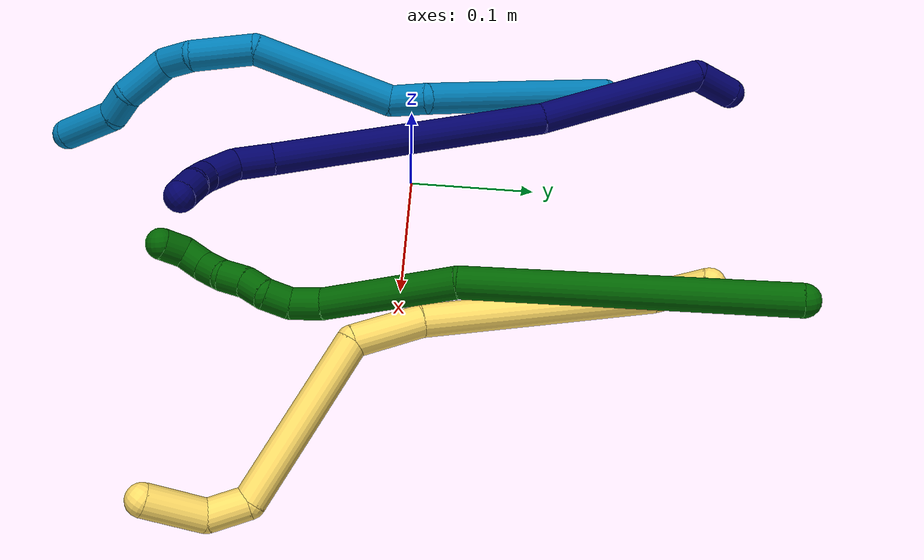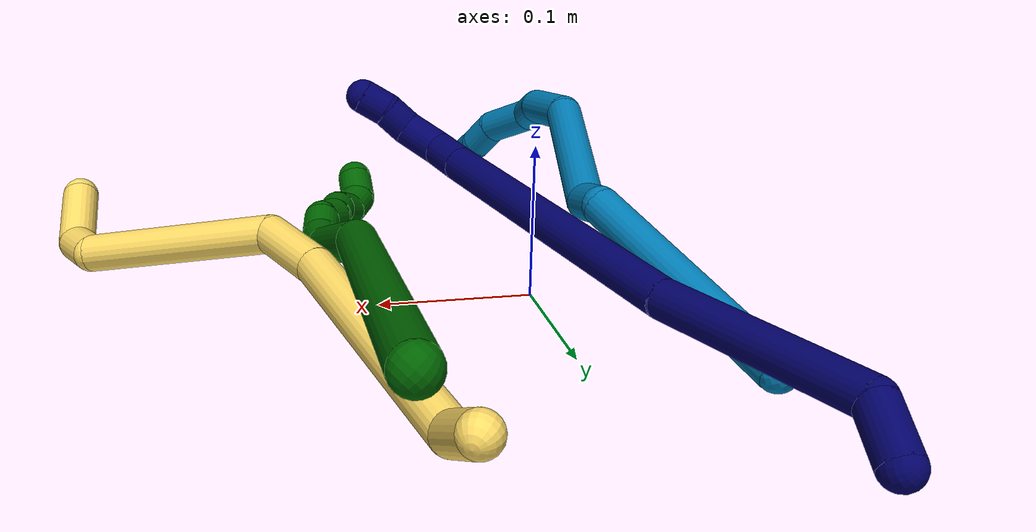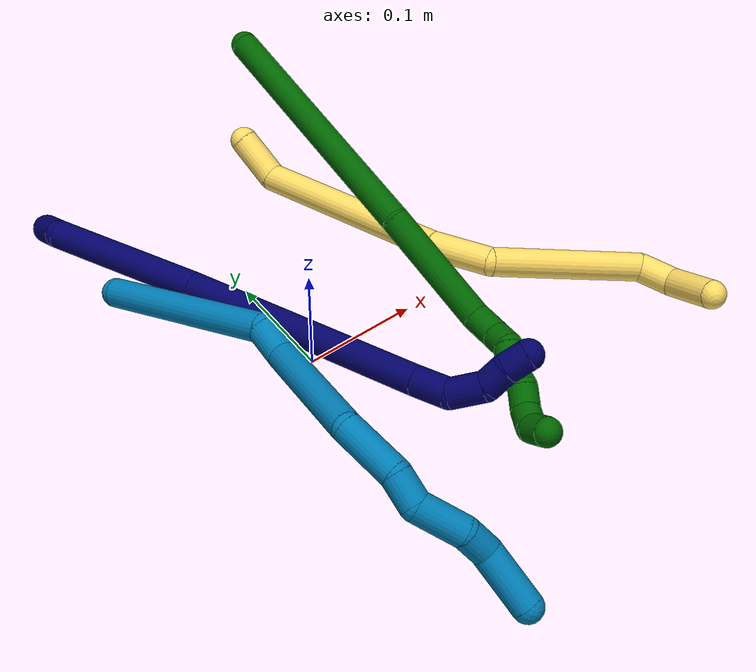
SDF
<sdf version="1.7">
 <world name="default">
  <model name="5">
   <static>0</static>
   <link name="5">
    <collision name="collision-cylinder-e_1_1_4">
     <pose>0.01713 -0.002287 -0.013739 2.97665 0.888119 2.79753</pose>
     <geometry><cylinder><radius>0.0125</radius><length>0.044155</length></cylinder></geometry>
     <surface>
      <friction><ode><mu>1.16</mu><mu2>1.16</mu2><slip1>0</slip1><slip2>0</slip2></ode></friction>
      <contact><ode><kp>1e+06</kp><kd>1</kd><max_vel>0</max_vel><min_depth>0.001</min_depth></ode></contact>
     </surface>
    </collision>
    <visual name="visual-cylinder-e_1_1_4">
     <pose>0.01713 -0.002287 -0.013739 2.97665 0.888119 2.79753</pose>
     <geometry><cylinder><radius>0.0125</radius><length>0.044155</length></cylinder></geometry>
     <material><ambient>1 0.858824 0.4 1</ambient></material>
    </visual>
    <collision name="collision-cylinder-e_2_4_5">
     <pose>0.071322 -0.058095 -0.092867 2.45567 0.413348 1.06189</pose>
     <geometry><cylinder><radius>0.0125</radius><length>0.184541</length></cylinder></geometry>
     <surface>
      <friction><ode><mu>1.16</mu><mu2>1.16</mu2><slip1>0</slip1><slip2>0</slip2></ode></friction>
      <contact><ode><kp>1e+06</kp><kd>1</kd><max_vel>0</max_vel><min_depth>0.001</min_depth></ode></contact>
     </surface>
    </collision>
    <visual name="visual-cylinder-e_2_4_5">
     <pose>0.071322 -0.058095 -0.092867 2.45567 0.413348 1.06189</pose>
     <geometry><cylinder><radius>0.0125</radius><length>0.184541</length></cylinder></geometry>
     <material><ambient>1 0.858824 0.4 1</ambient></material>
    </visual>
    <collision name="collision-cylinder-e_3_5_6">
     <pose>0.121469 -0.129955 -0.173797 2.27378 0.498417 1.00454</pose>
     <geometry><cylinder><radius>0.0125</radius><length>0.054739</length></cylinder></geometry>
     <surface>
      <friction><ode><mu>1.16</mu><mu2>1.16</mu2><slip1>0</slip1><slip2>0</slip2></ode></friction>
      <contact><ode><kp>1e+06</kp><kd>1</kd><max_vel>0</max_vel><min_depth>0.001</min_depth></ode></contact>
     </surface>
    </collision>
    <visual name="visual-cylinder-e_3_5_6">
     <pose>0.121469 -0.129955 -0.173797 2.27378 0.498417 1.00454</pose>
     <geometry><cylinder><radius>0.0125</radius><length>0.054739</length></cylinder></geometry>
     <material><ambient>1 0.858824 0.4 1</ambient></material>
    </visual>
    <collision name="collision-cylinder-e_4_6_7">
     <pose>0.184711 -0.194716 -0.183877 1.45366 0.82066 0.738213</pose>
     <geometry><cylinder><radius>0.0125</radius><length>0.137122</length></cylinder></geometry>
     <surface>
      <friction><ode><mu>1.16</mu><mu2>1.16</mu2><slip1>0</slip1><slip2>0</slip2></ode></friction>
      <contact><ode><kp>1e+06</kp><kd>1</kd><max_vel>0</max_vel><min_depth>0.001</min_depth></ode></contact>
     </surface>
    </collision>
    <visual name="visual-cylinder-e_4_6_7">
     <pose>0.184711 -0.194716 -0.183877 1.45366 0.82066 0.738213</pose>
     <geometry><cylinder><radius>0.0125</radius><length>0.137122</length></cylinder></geometry>
     <material><ambient>1 0.858824 0.4 1</ambient></material>
    </visual>
    <collision name="collision-cylinder-e_5_7_8">
     <pose>0.244284 -0.249746 -0.18763 2.39018 0.641205 1.39947</pose>
     <geometry><cylinder><radius>0.0125</radius><length>0.031476</length></cylinder></geometry>
     <surface>
      <friction><ode><mu>1.16</mu><mu2>1.16</mu2><slip1>0</slip1><slip2>0</slip2></ode></friction>
      <contact><ode><kp>1e+06</kp><kd>1</kd><max_vel>0</max_vel><min_depth>0.001</min_depth></ode></contact>
     </surface>
    </collision>
    <visual name="visual-cylinder-e_5_7_8">
     <pose>0.244284 -0.249746 -0.18763 2.39018 0.641205 1.39947</pose>
     <geometry><cylinder><radius>0.0125</radius><length>0.031476</length></cylinder></geometry>
     <material><ambient>1 0.858824 0.4 1</ambient></material>
    </visual>
    <collision name="collision-cylinder-e_6_8_2">
     <pose>0.25353 -0.271102 -0.217162 2.58125 -0.006981 -0.024261</pose>
     <geometry><cylinder><radius>0.0125</radius><length>0.047968</length></cylinder></geometry>
     <surface>
      <friction><ode><mu>1.16</mu><mu2>1.16</mu2><slip1>0</slip1><slip2>0</slip2></ode></friction>
      <contact><ode><kp>1e+06</kp><kd>1</kd><max_vel>0</max_vel><min_depth>0.001</min_depth></ode></contact>
     </surface>
    </collision>
    <visual name="visual-cylinder-e_6_8_2">
     <pose>0.25353 -0.271102 -0.217162 2.58125 -0.006981 -0.024261</pose>
     <geometry><cylinder><radius>0.0125</radius><length>0.047968</length></cylinder></geometry>
     <material><ambient>1 0.858824 0.4 1</ambient></material>
    </visual>
    <collision name="collision-sphere-2">
     <pose>0.253362 -0.283849 -0.237478 0 -0 0</pose>
     <geometry><sphere><radius>0.0125</radius></sphere></geometry>
     <surface>
      <friction><ode><mu>1.16</mu><mu2>1.16</mu2><slip1>0</slip1><slip2>0</slip2></ode></friction>
      <contact><ode><kp>1e+06</kp><kd>1</kd><max_vel>0</max_vel><min_depth>0.001</min_depth></ode></contact>
     </surface>
    </collision>
    <visual name="visual-sphere-2">
     <pose>0.253362 -0.283849 -0.237478 0 -0 0</pose>
     <geometry><sphere><radius>0.0125</radius></sphere></geometry>
     <material><ambient>1 0.858824 0.4 1</ambient></material>
    </visual>
    <collision name="collision-sphere-4">
     <pose>0.034259 -0.004574 -0.027478 0 -0 0</pose>
     <geometry><sphere><radius>0.0125</radius></sphere></geometry>
     <surface>
      <friction><ode><mu>1.16</mu><mu2>1.16</mu2><slip1>0</slip1><slip2>0</slip2></ode></friction>
      <contact><ode><kp>1e+06</kp><kd>1</kd><max_vel>0</max_vel><min_depth>0.001</min_depth></ode></contact>
     </surface>
    </collision>
    <visual name="visual-sphere-4">
     <pose>0.034259 -0.004574 -0.027478 0 -0 0</pose>
     <geometry><sphere><radius>0.0125</radius></sphere></geometry>
     <material><ambient>1 0.858824 0.4 1</ambient></material>
    </visual>
    <collision name="collision-sphere-1">
     <geometry><sphere><radius>0.0125</radius></sphere></geometry>
     <surface>
      <friction><ode><mu>1.16</mu><mu2>1.16</mu2><slip1>0</slip1><slip2>0</slip2></ode></friction>
      <contact><ode><kp>1e+06</kp><kd>1</kd><max_vel>0</max_vel><min_depth>0.001</min_depth></ode></contact>
     </surface>
    </collision>
    <visual name="visual-sphere-1">
     <geometry><sphere><radius>0.0125</radius></sphere></geometry>
     <material><ambient>1 0.858824 0.4 1</ambient></material>
    </visual>
    <collision name="collision-sphere-8">
     <pose>0.253697 -0.258356 -0.196846 0 -0 0</pose>
     <geometry><sphere><radius>0.0125</radius></sphere></geometry>
     <surface>
      <friction><ode><mu>1.16</mu><mu2>1.16</mu2><slip1>0</slip1><slip2>0</slip2></ode></friction>
      <contact><ode><kp>1e+06</kp><kd>1</kd><max_vel>0</max_vel><min_depth>0.001</min_depth></ode></contact>
     </surface>
    </collision>
    <visual name="visual-sphere-8">
     <pose>0.253697 -0.258356 -0.196846 0 -0 0</pose>
     <geometry><sphere><radius>0.0125</radius></sphere></geometry>
     <material><ambient>1 0.858824 0.4 1</ambient></material>
    </visual>
    <collision name="collision-sphere-5">
     <pose>0.108385 -0.111615 -0.158256 0 -0 0</pose>
     <geometry><sphere><radius>0.0125</radius></sphere></geometry>
     <surface>
      <friction><ode><mu>1.16</mu><mu2>1.16</mu2><slip1>0</slip1><slip2>0</slip2></ode></friction>
      <contact><ode><kp>1e+06</kp><kd>1</kd><max_vel>0</max_vel><min_depth>0.001</min_depth></ode></contact>
     </surface>
    </collision>
    <visual name="visual-sphere-5">
     <pose>0.108385 -0.111615 -0.158256 0 -0 0</pose>
     <geometry><sphere><radius>0.0125</radius></sphere></geometry>
     <material><ambient>1 0.858824 0.4 1</ambient></material>
    </visual>
    <collision name="collision-sphere-6">
     <pose>0.134552 -0.148295 -0.189339 0 -0 0</pose>
     <geometry><sphere><radius>0.0125</radius></sphere></geometry>
     <surface>
      <friction><ode><mu>1.16</mu><mu2>1.16</mu2><slip1>0</slip1><slip2>0</slip2></ode></friction>
      <contact><ode><kp>1e+06</kp><kd>1</kd><max_vel>0</max_vel><min_depth>0.001</min_depth></ode></contact>
     </surface>
    </collision>
    <visual name="visual-sphere-6">
     <pose>0.134552 -0.148295 -0.189339 0 -0 0</pose>
     <geometry><sphere><radius>0.0125</radius></sphere></geometry>
     <material><ambient>1 0.858824 0.4 1</ambient></material>
    </visual>
    <collision name="collision-sphere-7">
     <pose>0.23487 -0.241136 -0.178414 0 -0 0</pose>
     <geometry><sphere><radius>0.0125</radius></sphere></geometry>
     <surface>
      <friction><ode><mu>1.16</mu><mu2>1.16</mu2><slip1>0</slip1><slip2>0</slip2></ode></friction>
      <contact><ode><kp>1e+06</kp><kd>1</kd><max_vel>0</max_vel><min_depth>0.001</min_depth></ode></contact>
     </surface>
    </collision>
    <visual name="visual-sphere-7">
     <pose>0.23487 -0.241136 -0.178414 0 -0 0</pose>
     <geometry><sphere><radius>0.0125</radius></sphere></geometry>
     <material><ambient>1 0.858824 0.4 1</ambient></material>
    </visual>
    <inertial>
     <pose>0.131491 -0.131001 -0.137588 0 -0 0</pose>
     <mass>0.5</mass>
     <inertia>
      <ixx>0.000923</ixx>
      <ixy>0</ixy>
      <ixz>0</ixz>
      <iyy>0.000564</iyy>
      <iyz>0</iyz>
      <izz>6.7e-05</izz>
     </inertia>
    </inertial>
   </link>
   <pose>0.089868 0.235327 0.032655 -1.85028 0.926948 -0.756047</pose>
  </model>
  <model name="6">
   <static>0</static>
   <link name="6">
    <collision name="collision-cylinder-e_1_1_4">
     <pose>0.003152 -0.121939 -0.011405 1.66405 0.025727 0.028246</pose>
     <geometry><cylinder><radius>0.0125</radius><length>0.245023</length></cylinder></geometry>
     <surface>
      <friction><ode><mu>1.16</mu><mu2>1.16</mu2><slip1>0</slip1><slip2>0</slip2></ode></friction>
      <contact><ode><kp>1e+06</kp><kd>1</kd><max_vel>0</max_vel><min_depth>0.001</min_depth></ode></contact>
     </surface>
    </collision>
    <visual name="visual-cylinder-e_1_1_4">
     <pose>0.003152 -0.121939 -0.011405 1.66405 0.025727 0.028246</pose>
     <geometry><cylinder><radius>0.0125</radius><length>0.245023</length></cylinder></geometry>
     <material><ambient>0 0.392157 0.003922 1</ambient></material>
    </visual>
    <collision name="collision-cylinder-e_2_4_5">
     <pose>0.012369 -0.297266 -0.014921 1.4241 0.111931 0.096633</pose>
     <geometry><cylinder><radius>0.0125</radius><length>0.108616</length></cylinder></geometry>
     <surface>
      <friction><ode><mu>1.16</mu><mu2>1.16</mu2><slip1>0</slip1><slip2>0</slip2></ode></friction>
      <contact><ode><kp>1e+06</kp><kd>1</kd><max_vel>0</max_vel><min_depth>0.001</min_depth></ode></contact>
     </surface>
    </collision>
    <visual name="visual-cylinder-e_2_4_5">
     <pose>0.012369 -0.297266 -0.014921 1.4241 0.111931 0.096633</pose>
     <geometry><cylinder><radius>0.0125</radius><length>0.108616</length></cylinder></geometry>
     <material><ambient>0 0.392157 0.003922 1</ambient></material>
    </visual>
    <collision name="collision-cylinder-e_3_5_6">
     <pose>0.017427 -0.363198 -0.008048 1.65156 -0.079925 -0.086647</pose>
     <geometry><cylinder><radius>0.0125</radius><length>0.025251</length></cylinder></geometry>
     <surface>
      <friction><ode><mu>1.16</mu><mu2>1.16</mu2><slip1>0</slip1><slip2>0</slip2></ode></friction>
      <contact><ode><kp>1e+06</kp><kd>1</kd><max_vel>0</max_vel><min_depth>0.001</min_depth></ode></contact>
     </surface>
    </collision>
    <visual name="visual-cylinder-e_3_5_6">
     <pose>0.017427 -0.363198 -0.008048 1.65156 -0.079925 -0.086647</pose>
     <geometry><cylinder><radius>0.0125</radius><length>0.025251</length></cylinder></geometry>
     <material><ambient>0 0.392157 0.003922 1</ambient></material>
    </visual>
    <collision name="collision-cylinder-e_4_6_7">
     <pose>0.014702 -0.384741 -0.013788 2.0543 -0.167338 -0.275755</pose>
     <geometry><cylinder><radius>0.0125</radius><length>0.020615</length></cylinder></geometry>
     <surface>
      <friction><ode><mu>1.16</mu><mu2>1.16</mu2><slip1>0</slip1><slip2>0</slip2></ode></friction>
      <contact><ode><kp>1e+06</kp><kd>1</kd><max_vel>0</max_vel><min_depth>0.001</min_depth></ode></contact>
     </surface>
    </collision>
    <visual name="visual-cylinder-e_4_6_7">
     <pose>0.014702 -0.384741 -0.013788 2.0543 -0.167338 -0.275755</pose>
     <geometry><cylinder><radius>0.0125</radius><length>0.020615</length></cylinder></geometry>
     <material><ambient>0 0.392157 0.003922 1</ambient></material>
    </visual>
    <collision name="collision-cylinder-e_5_7_8">
     <pose>0.01726 -0.401967 -0.022308 2.00296 0.440802 0.673454</pose>
     <geometry><cylinder><radius>0.0125</radius><length>0.020037</length></cylinder></geometry>
     <surface>
      <friction><ode><mu>1.16</mu><mu2>1.16</mu2><slip1>0</slip1><slip2>0</slip2></ode></friction>
      <contact><ode><kp>1e+06</kp><kd>1</kd><max_vel>0</max_vel><min_depth>0.001</min_depth></ode></contact>
     </surface>
    </collision>
    <visual name="visual-cylinder-e_5_7_8">
     <pose>0.01726 -0.401967 -0.022308 2.00296 0.440802 0.673454</pose>
     <geometry><cylinder><radius>0.0125</radius><length>0.020037</length></cylinder></geometry>
     <material><ambient>0 0.392157 0.003922 1</ambient></material>
    </visual>
    <collision name="collision-cylinder-e_6_8_9">
     <pose>0.022808 -0.419785 -0.02902 1.8661 0.126361 0.170332</pose>
     <geometry><cylinder><radius>0.0125</radius><length>0.020209</length></cylinder></geometry>
     <surface>
      <friction><ode><mu>1.16</mu><mu2>1.16</mu2><slip1>0</slip1><slip2>0</slip2></ode></friction>
      <contact><ode><kp>1e+06</kp><kd>1</kd><max_vel>0</max_vel><min_depth>0.001</min_depth></ode></contact>
     </surface>
    </collision>
    <visual name="visual-cylinder-e_6_8_9">
     <pose>0.022808 -0.419785 -0.02902 1.8661 0.126361 0.170332</pose>
     <geometry><cylinder><radius>0.0125</radius><length>0.020209</length></cylinder></geometry>
     <material><ambient>0 0.392157 0.003922 1</ambient></material>
    </visual>
    <collision name="collision-cylinder-e_7_9_10">
     <pose>0.029239 -0.437679 -0.034405 1.85968 0.537059 0.70674</pose>
     <geometry><cylinder><radius>0.0125</radius><length>0.020164</length></cylinder></geometry>
     <surface>
      <friction><ode><mu>1.16</mu><mu2>1.16</mu2><slip1>0</slip1><slip2>0</slip2></ode></friction>
      <contact><ode><kp>1e+06</kp><kd>1</kd><max_vel>0</max_vel><min_depth>0.001</min_depth></ode></contact>
     </surface>
    </collision>
    <visual name="visual-cylinder-e_7_9_10">
     <pose>0.029239 -0.437679 -0.034405 1.85968 0.537059 0.70674</pose>
     <geometry><cylinder><radius>0.0125</radius><length>0.020164</length></cylinder></geometry>
     <material><ambient>0 0.392157 0.003922 1</ambient></material>
    </visual>
    <collision name="collision-cylinder-e_8_10_11">
     <pose>0.035731 -0.454014 -0.042744 2.20201 0.133225 0.2613</pose>
     <geometry><cylinder><radius>0.0125</radius><length>0.020076</length></cylinder></geometry>
     <surface>
      <friction><ode><mu>1.16</mu><mu2>1.16</mu2><slip1>0</slip1><slip2>0</slip2></ode></friction>
      <contact><ode><kp>1e+06</kp><kd>1</kd><max_vel>0</max_vel><min_depth>0.001</min_depth></ode></contact>
     </surface>
    </collision>
    <visual name="visual-cylinder-e_8_10_11">
     <pose>0.035731 -0.454014 -0.042744 2.20201 0.133225 0.2613</pose>
     <geometry><cylinder><radius>0.0125</radius><length>0.020076</length></cylinder></geometry>
     <material><ambient>0 0.392157 0.003922 1</ambient></material>
    </visual>
    <collision name="collision-cylinder-e_9_11_2">
     <pose>0.032082 -0.469066 -0.053714 2.19895 -0.521281 -0.964284</pose>
     <geometry><cylinder><radius>0.0125</radius><length>0.02001</length></cylinder></geometry>
     <surface>
      <friction><ode><mu>1.16</mu><mu2>1.16</mu2><slip1>0</slip1><slip2>0</slip2></ode></friction>
      <contact><ode><kp>1e+06</kp><kd>1</kd><max_vel>0</max_vel><min_depth>0.001</min_depth></ode></contact>
     </surface>
    </collision>
    <visual name="visual-cylinder-e_9_11_2">
     <pose>0.032082 -0.469066 -0.053714 2.19895 -0.521281 -0.964284</pose>
     <geometry><cylinder><radius>0.0125</radius><length>0.02001</length></cylinder></geometry>
     <material><ambient>0 0.392157 0.003922 1</ambient></material>
    </visual>
    <collision name="collision-sphere-2">
     <pose>0.027099 -0.476086 -0.058812 0 -0 0</pose>
     <geometry><sphere><radius>0.0125</radius></sphere></geometry>
     <surface>
      <friction><ode><mu>1.16</mu><mu2>1.16</mu2><slip1>0</slip1><slip2>0</slip2></ode></friction>
      <contact><ode><kp>1e+06</kp><kd>1</kd><max_vel>0</max_vel><min_depth>0.001</min_depth></ode></contact>
     </surface>
    </collision>
    <visual name="visual-sphere-2">
     <pose>0.027099 -0.476086 -0.058812 0 -0 0</pose>
     <geometry><sphere><radius>0.0125</radius></sphere></geometry>
     <material><ambient>0 0.392157 0.003922 1</ambient></material>
    </visual>
    <collision name="collision-sphere-11">
     <pose>0.037064 -0.462046 -0.048615 0 -0 0</pose>
     <geometry><sphere><radius>0.0125</radius></sphere></geometry>
     <surface>
      <friction><ode><mu>1.16</mu><mu2>1.16</mu2><slip1>0</slip1><slip2>0</slip2></ode></friction>
      <contact><ode><kp>1e+06</kp><kd>1</kd><max_vel>0</max_vel><min_depth>0.001</min_depth></ode></contact>
     </surface>
    </collision>
    <visual name="visual-sphere-11">
     <pose>0.037064 -0.462046 -0.048615 0 -0 0</pose>
     <geometry><sphere><radius>0.0125</radius></sphere></geometry>
     <material><ambient>0 0.392157 0.003922 1</ambient></material>
    </visual>
    <collision name="collision-sphere-10">
     <pose>0.034397 -0.445983 -0.036873 0 -0 0</pose>
     <geometry><sphere><radius>0.0125</radius></sphere></geometry>
     <surface>
      <friction><ode><mu>1.16</mu><mu2>1.16</mu2><slip1>0</slip1><slip2>0</slip2></ode></friction>
      <contact><ode><kp>1e+06</kp><kd>1</kd><max_vel>0</max_vel><min_depth>0.001</min_depth></ode></contact>
     </surface>
    </collision>
    <visual name="visual-sphere-10">
     <pose>0.034397 -0.445983 -0.036873 0 -0 0</pose>
     <geometry><sphere><radius>0.0125</radius></sphere></geometry>
     <material><ambient>0 0.392157 0.003922 1</ambient></material>
    </visual>
    <collision name="collision-sphere-9">
     <pose>0.024081 -0.429375 -0.031937 0 -0 0</pose>
     <geometry><sphere><radius>0.0125</radius></sphere></geometry>
     <surface>
      <friction><ode><mu>1.16</mu><mu2>1.16</mu2><slip1>0</slip1><slip2>0</slip2></ode></friction>
      <contact><ode><kp>1e+06</kp><kd>1</kd><max_vel>0</max_vel><min_depth>0.001</min_depth></ode></contact>
     </surface>
    </collision>
    <visual name="visual-sphere-9">
     <pose>0.024081 -0.429375 -0.031937 0 -0 0</pose>
     <geometry><sphere><radius>0.0125</radius></sphere></geometry>
     <material><ambient>0 0.392157 0.003922 1</ambient></material>
    </visual>
    <collision name="collision-sphere-4">
     <pose>0.006303 -0.243877 -0.022809 0 -0 0</pose>
     <geometry><sphere><radius>0.0125</radius></sphere></geometry>
     <surface>
      <friction><ode><mu>1.16</mu><mu2>1.16</mu2><slip1>0</slip1><slip2>0</slip2></ode></friction>
      <contact><ode><kp>1e+06</kp><kd>1</kd><max_vel>0</max_vel><min_depth>0.001</min_depth></ode></contact>
     </surface>
    </collision>
    <visual name="visual-sphere-4">
     <pose>0.006303 -0.243877 -0.022809 0 -0 0</pose>
     <geometry><sphere><radius>0.0125</radius></sphere></geometry>
     <material><ambient>0 0.392157 0.003922 1</ambient></material>
    </visual>
    <collision name="collision-sphere-1">
     <geometry><sphere><radius>0.0125</radius></sphere></geometry>
     <surface>
      <friction><ode><mu>1.16</mu><mu2>1.16</mu2><slip1>0</slip1><slip2>0</slip2></ode></friction>
      <contact><ode><kp>1e+06</kp><kd>1</kd><max_vel>0</max_vel><min_depth>0.001</min_depth></ode></contact>
     </surface>
    </collision>
    <visual name="visual-sphere-1">
     <geometry><sphere><radius>0.0125</radius></sphere></geometry>
     <material><ambient>0 0.392157 0.003922 1</ambient></material>
    </visual>
    <collision name="collision-sphere-8">
     <pose>0.021534 -0.410195 -0.026103 0 -0 0</pose>
     <geometry><sphere><radius>0.0125</radius></sphere></geometry>
     <surface>
      <friction><ode><mu>1.16</mu><mu2>1.16</mu2><slip1>0</slip1><slip2>0</slip2></ode></friction>
      <contact><ode><kp>1e+06</kp><kd>1</kd><max_vel>0</max_vel><min_depth>0.001</min_depth></ode></contact>
     </surface>
    </collision>
    <visual name="visual-sphere-8">
     <pose>0.021534 -0.410195 -0.026103 0 -0 0</pose>
     <geometry><sphere><radius>0.0125</radius></sphere></geometry>
     <material><ambient>0 0.392157 0.003922 1</ambient></material>
    </visual>
    <collision name="collision-sphere-5">
     <pose>0.018435 -0.350654 -0.007032 0 -0 0</pose>
     <geometry><sphere><radius>0.0125</radius></sphere></geometry>
     <surface>
      <friction><ode><mu>1.16</mu><mu2>1.16</mu2><slip1>0</slip1><slip2>0</slip2></ode></friction>
      <contact><ode><kp>1e+06</kp><kd>1</kd><max_vel>0</max_vel><min_depth>0.001</min_depth></ode></contact>
     </surface>
    </collision>
    <visual name="visual-sphere-5">
     <pose>0.018435 -0.350654 -0.007032 0 -0 0</pose>
     <geometry><sphere><radius>0.0125</radius></sphere></geometry>
     <material><ambient>0 0.392157 0.003922 1</ambient></material>
    </visual>
    <collision name="collision-sphere-6">
     <pose>0.016419 -0.375742 -0.009063 0 -0 0</pose>
     <geometry><sphere><radius>0.0125</radius></sphere></geometry>
     <surface>
      <friction><ode><mu>1.16</mu><mu2>1.16</mu2><slip1>0</slip1><slip2>0</slip2></ode></friction>
      <contact><ode><kp>1e+06</kp><kd>1</kd><max_vel>0</max_vel><min_depth>0.001</min_depth></ode></contact>
     </surface>
    </collision>
    <visual name="visual-sphere-6">
     <pose>0.016419 -0.375742 -0.009063 0 -0 0</pose>
     <geometry><sphere><radius>0.0125</radius></sphere></geometry>
     <material><ambient>0 0.392157 0.003922 1</ambient></material>
    </visual>
    <collision name="collision-sphere-7">
     <pose>0.012986 -0.39374 -0.018513 0 -0 0</pose>
     <geometry><sphere><radius>0.0125</radius></sphere></geometry>
     <surface>
      <friction><ode><mu>1.16</mu><mu2>1.16</mu2><slip1>0</slip1><slip2>0</slip2></ode></friction>
      <contact><ode><kp>1e+06</kp><kd>1</kd><max_vel>0</max_vel><min_depth>0.001</min_depth></ode></contact>
     </surface>
    </collision>
    <visual name="visual-sphere-7">
     <pose>0.012986 -0.39374 -0.018513 0 -0 0</pose>
     <geometry><sphere><radius>0.0125</radius></sphere></geometry>
     <material><ambient>0 0.392157 0.003922 1</ambient></material>
    </visual>
    <inertial>
     <pose>0.011229 -0.246263 -0.017125 0 -0 0</pose>
     <mass>0.5</mass>
     <inertia><ixx>0.001402</ixx><ixy>0</ixy><ixz>0</ixz><iyy>-9e-05</iyy><iyz>0</iyz><izz>0.001299</izz></inertia>
    </inertial>
   </link>
   <pose>0.129376 0.287112 0.093071 2.88612 0.789091 3.00371</pose>
  </model>
  <model name="7">
   <static>0</static>
   <link name="7">
    <collision name="collision-cylinder-e_1_1_4">
     <pose>0.001121 -0.017423 -0.006105 1.90784 0.06065 0.085492</pose>
     <geometry><cylinder><radius>0.0125</radius><length>0.036991</length></cylinder></geometry>
     <surface>
      <friction><ode><mu>1.16</mu><mu2>1.16</mu2><slip1>0</slip1><slip2>0</slip2></ode></friction>
      <contact><ode><kp>1e+06</kp><kd>1</kd><max_vel>0</max_vel><min_depth>0.001</min_depth></ode></contact>
     </surface>
    </collision>
    <visual name="visual-cylinder-e_1_1_4">
     <pose>0.001121 -0.017423 -0.006105 1.90784 0.06065 0.085492</pose>
     <geometry><cylinder><radius>0.0125</radius><length>0.036991</length></cylinder></geometry>
     <material><ambient>0.003922 0 0.403922 1</ambient></material>
    </visual>
    <collision name="collision-cylinder-e_2_4_5">
     <pose>0.017427 -0.071092 -0.070583 2.58591 0.217506 0.731197</pose>
     <geometry><cylinder><radius>0.0125</radius><length>0.140736</length></cylinder></geometry>
     <surface>
      <friction><ode><mu>1.16</mu><mu2>1.16</mu2><slip1>0</slip1><slip2>0</slip2></ode></friction>
      <contact><ode><kp>1e+06</kp><kd>1</kd><max_vel>0</max_vel><min_depth>0.001</min_depth></ode></contact>
     </surface>
    </collision>
    <visual name="visual-cylinder-e_2_4_5">
     <pose>0.017427 -0.071092 -0.070583 2.58591 0.217506 0.731197</pose>
     <geometry><cylinder><radius>0.0125</radius><length>0.140736</length></cylinder></geometry>
     <material><ambient>0.003922 0 0.403922 1</ambient></material>
    </visual>
    <collision name="collision-cylinder-e_3_5_6">
     <pose>0.051883 -0.175249 -0.21485 2.4726 0.174207 0.492309</pose>
     <geometry><cylinder><radius>0.0125</radius><length>0.222363</length></cylinder></geometry>
     <surface>
      <friction><ode><mu>1.16</mu><mu2>1.16</mu2><slip1>0</slip1><slip2>0</slip2></ode></friction>
      <contact><ode><kp>1e+06</kp><kd>1</kd><max_vel>0</max_vel><min_depth>0.001</min_depth></ode></contact>
     </surface>
    </collision>
    <visual name="visual-cylinder-e_3_5_6">
     <pose>0.051883 -0.175249 -0.21485 2.4726 0.174207 0.492309</pose>
     <geometry><cylinder><radius>0.0125</radius><length>0.222363</length></cylinder></geometry>
     <material><ambient>0.003922 0 0.403922 1</ambient></material>
    </visual>
    <collision name="collision-cylinder-e_4_6_7">
     <pose>0.074072 -0.252538 -0.311891 2.44214 0.197731 0.531075</pose>
     <geometry><cylinder><radius>0.0125</radius><length>0.02971</length></cylinder></geometry>
     <surface>
      <friction><ode><mu>1.16</mu><mu2>1.16</mu2><slip1>0</slip1><slip2>0</slip2></ode></friction>
      <contact><ode><kp>1e+06</kp><kd>1</kd><max_vel>0</max_vel><min_depth>0.001</min_depth></ode></contact>
     </surface>
    </collision>
    <visual name="visual-cylinder-e_4_6_7">
     <pose>0.074072 -0.252538 -0.311891 2.44214 0.197731 0.531075</pose>
     <geometry><cylinder><radius>0.0125</radius><length>0.02971</length></cylinder></geometry>
     <material><ambient>0.003922 0 0.403922 1</ambient></material>
    </visual>
    <collision name="collision-cylinder-e_5_7_8">
     <pose>0.087016 -0.269433 -0.331066 2.38904 0.739141 1.55103</pose>
     <geometry><cylinder><radius>0.0125</radius><length>0.029766</length></cylinder></geometry>
     <surface>
      <friction><ode><mu>1.16</mu><mu2>1.16</mu2><slip1>0</slip1><slip2>0</slip2></ode></friction>
      <contact><ode><kp>1e+06</kp><kd>1</kd><max_vel>0</max_vel><min_depth>0.001</min_depth></ode></contact>
     </surface>
    </collision>
    <visual name="visual-cylinder-e_5_7_8">
     <pose>0.087016 -0.269433 -0.331066 2.38904 0.739141 1.55103</pose>
     <geometry><cylinder><radius>0.0125</radius><length>0.029766</length></cylinder></geometry>
     <material><ambient>0.003922 0 0.403922 1</ambient></material>
    </visual>
    <collision name="collision-cylinder-e_6_8_9">
     <pose>0.106243 -0.280988 -0.34024 1.84731 1.14285 1.40996</pose>
     <geometry><cylinder><radius>0.0125</radius><length>0.020225</length></cylinder></geometry>
     <surface>
      <friction><ode><mu>1.16</mu><mu2>1.16</mu2><slip1>0</slip1><slip2>0</slip2></ode></friction>
      <contact><ode><kp>1e+06</kp><kd>1</kd><max_vel>0</max_vel><min_depth>0.001</min_depth></ode></contact>
     </surface>
    </collision>
    <visual name="visual-cylinder-e_6_8_9">
     <pose>0.106243 -0.280988 -0.34024 1.84731 1.14285 1.40996</pose>
     <geometry><cylinder><radius>0.0125</radius><length>0.020225</length></cylinder></geometry>
     <material><ambient>0.003922 0 0.403922 1</ambient></material>
    </visual>
    <collision name="collision-cylinder-e_7_9_2">
     <pose>0.124521 -0.288039 -0.344642 2.39499 1.11621 2.02101</pose>
     <geometry><cylinder><radius>0.0125</radius><length>0.020208</length></cylinder></geometry>
     <surface>
      <friction><ode><mu>1.16</mu><mu2>1.16</mu2><slip1>0</slip1><slip2>0</slip2></ode></friction>
      <contact><ode><kp>1e+06</kp><kd>1</kd><max_vel>0</max_vel><min_depth>0.001</min_depth></ode></contact>
     </surface>
    </collision>
    <visual name="visual-cylinder-e_7_9_2">
     <pose>0.124521 -0.288039 -0.344642 2.39499 1.11621 2.02101</pose>
     <geometry><cylinder><radius>0.0125</radius><length>0.020208</length></cylinder></geometry>
     <material><ambient>0.003922 0 0.403922 1</ambient></material>
    </visual>
    <collision name="collision-sphere-2">
     <pose>0.133599 -0.291052 -0.347899 0 -0 0</pose>
     <geometry><sphere><radius>0.0125</radius></sphere></geometry>
     <surface>
      <friction><ode><mu>1.16</mu><mu2>1.16</mu2><slip1>0</slip1><slip2>0</slip2></ode></friction>
      <contact><ode><kp>1e+06</kp><kd>1</kd><max_vel>0</max_vel><min_depth>0.001</min_depth></ode></contact>
     </surface>
    </collision>
    <visual name="visual-sphere-2">
     <pose>0.133599 -0.291052 -0.347899 0 -0 0</pose>
     <geometry><sphere><radius>0.0125</radius></sphere></geometry>
     <material><ambient>0.003922 0 0.403922 1</ambient></material>
    </visual>
    <collision name="collision-sphere-9">
     <pose>0.115443 -0.285026 -0.341386 0 -0 0</pose>
     <geometry><sphere><radius>0.0125</radius></sphere></geometry>
     <surface>
      <friction><ode><mu>1.16</mu><mu2>1.16</mu2><slip1>0</slip1><slip2>0</slip2></ode></friction>
      <contact><ode><kp>1e+06</kp><kd>1</kd><max_vel>0</max_vel><min_depth>0.001</min_depth></ode></contact>
     </surface>
    </collision>
    <visual name="visual-sphere-9">
     <pose>0.115443 -0.285026 -0.341386 0 -0 0</pose>
     <geometry><sphere><radius>0.0125</radius></sphere></geometry>
     <material><ambient>0.003922 0 0.403922 1</ambient></material>
    </visual>
    <collision name="collision-sphere-4">
     <pose>0.002242 -0.034846 -0.012211 0 -0 0</pose>
     <geometry><sphere><radius>0.0125</radius></sphere></geometry>
     <surface>
      <friction><ode><mu>1.16</mu><mu2>1.16</mu2><slip1>0</slip1><slip2>0</slip2></ode></friction>
      <contact><ode><kp>1e+06</kp><kd>1</kd><max_vel>0</max_vel><min_depth>0.001</min_depth></ode></contact>
     </surface>
    </collision>
    <visual name="visual-sphere-4">
     <pose>0.002242 -0.034846 -0.012211 0 -0 0</pose>
     <geometry><sphere><radius>0.0125</radius></sphere></geometry>
     <material><ambient>0.003922 0 0.403922 1</ambient></material>
    </visual>
    <collision name="collision-sphere-1">
     <geometry><sphere><radius>0.0125</radius></sphere></geometry>
     <surface>
      <friction><ode><mu>1.16</mu><mu2>1.16</mu2><slip1>0</slip1><slip2>0</slip2></ode></friction>
      <contact><ode><kp>1e+06</kp><kd>1</kd><max_vel>0</max_vel><min_depth>0.001</min_depth></ode></contact>
     </surface>
    </collision>
    <visual name="visual-sphere-1">
     <geometry><sphere><radius>0.0125</radius></sphere></geometry>
     <material><ambient>0.003922 0 0.403922 1</ambient></material>
    </visual>
    <collision name="collision-sphere-8">
     <pose>0.097042 -0.276951 -0.339094 0 -0 0</pose>
     <geometry><sphere><radius>0.0125</radius></sphere></geometry>
     <surface>
      <friction><ode><mu>1.16</mu><mu2>1.16</mu2><slip1>0</slip1><slip2>0</slip2></ode></friction>
      <contact><ode><kp>1e+06</kp><kd>1</kd><max_vel>0</max_vel><min_depth>0.001</min_depth></ode></contact>
     </surface>
    </collision>
    <visual name="visual-sphere-8">
     <pose>0.097042 -0.276951 -0.339094 0 -0 0</pose>
     <geometry><sphere><radius>0.0125</radius></sphere></geometry>
     <material><ambient>0.003922 0 0.403922 1</ambient></material>
    </visual>
    <collision name="collision-sphere-5">
     <pose>0.032612 -0.107338 -0.128955 0 -0 0</pose>
     <geometry><sphere><radius>0.0125</radius></sphere></geometry>
     <surface>
      <friction><ode><mu>1.16</mu><mu2>1.16</mu2><slip1>0</slip1><slip2>0</slip2></ode></friction>
      <contact><ode><kp>1e+06</kp><kd>1</kd><max_vel>0</max_vel><min_depth>0.001</min_depth></ode></contact>
     </surface>
    </collision>
    <visual name="visual-sphere-5">
     <pose>0.032612 -0.107338 -0.128955 0 -0 0</pose>
     <geometry><sphere><radius>0.0125</radius></sphere></geometry>
     <material><ambient>0.003922 0 0.403922 1</ambient></material>
    </visual>
    <collision name="collision-sphere-6">
     <pose>0.071154 -0.24316 -0.300746 0 -0 0</pose>
     <geometry><sphere><radius>0.0125</radius></sphere></geometry>
     <surface>
      <friction><ode><mu>1.16</mu><mu2>1.16</mu2><slip1>0</slip1><slip2>0</slip2></ode></friction>
      <contact><ode><kp>1e+06</kp><kd>1</kd><max_vel>0</max_vel><min_depth>0.001</min_depth></ode></contact>
     </surface>
    </collision>
    <visual name="visual-sphere-6">
     <pose>0.071154 -0.24316 -0.300746 0 -0 0</pose>
     <geometry><sphere><radius>0.0125</radius></sphere></geometry>
     <material><ambient>0.003922 0 0.403922 1</ambient></material>
    </visual>
    <collision name="collision-sphere-7">
     <pose>0.07699 -0.261915 -0.323037 0 -0 0</pose>
     <geometry><sphere><radius>0.0125</radius></sphere></geometry>
     <surface>
      <friction><ode><mu>1.16</mu><mu2>1.16</mu2><slip1>0</slip1><slip2>0</slip2></ode></friction>
      <contact><ode><kp>1e+06</kp><kd>1</kd><max_vel>0</max_vel><min_depth>0.001</min_depth></ode></contact>
     </surface>
    </collision>
    <visual name="visual-sphere-7">
     <pose>0.07699 -0.261915 -0.323037 0 -0 0</pose>
     <geometry><sphere><radius>0.0125</radius></sphere></geometry>
     <material><ambient>0.003922 0 0.403922 1</ambient></material>
    </visual>
    <inertial>
     <pose>0.046974 -0.153291 -0.181802 0 -0 0</pose>
     <mass>0.5</mass>
     <inertia>
      <ixx>0.001586</ixx>
      <ixy>0</ixy>
      <ixz>0</ixz>
      <iyy>-0.000156</iyy>
      <iyz>0</iyz>
      <izz>0.000453</izz>
     </inertia>
    </inertial>
   </link>
   <pose>-0.105113 0.261781 0.011499 -0.931519 -0.507581 0.197915</pose>
  </model>
  <model name="9">
   <static>0</static>
   <link name="9">
    <collision name="collision-cylinder-e_1_1_4">
     <pose>0.014074 -0.077926 -0.022673 1.85394 0.171712 0.22836</pose>
     <geometry><cylinder><radius>0.0125</radius><length>0.164738</length></cylinder></geometry>
     <surface>
      <friction><ode><mu>1.16</mu><mu2>1.16</mu2><slip1>0</slip1><slip2>0</slip2></ode></friction>
      <contact><ode><kp>1e+06</kp><kd>1</kd><max_vel>0</max_vel><min_depth>0.001</min_depth></ode></contact>
     </surface>
    </collision>
    <visual name="visual-cylinder-e_1_1_4">
     <pose>0.014074 -0.077926 -0.022673 1.85394 0.171712 0.22836</pose>
     <geometry><cylinder><radius>0.0125</radius><length>0.164738</length></cylinder></geometry>
     <material><ambient>0 0.490196 0.709804 1</ambient></material>
    </visual>
    <collision name="collision-cylinder-e_2_4_5">
     <pose>0.029437 -0.169635 -0.040357 1.22346 0.087684 0.06153</pose>
     <geometry><cylinder><radius>0.0125</radius><length>0.029429</length></cylinder></geometry>
     <surface>
      <friction><ode><mu>1.16</mu><mu2>1.16</mu2><slip1>0</slip1><slip2>0</slip2></ode></friction>
      <contact><ode><kp>1e+06</kp><kd>1</kd><max_vel>0</max_vel><min_depth>0.001</min_depth></ode></contact>
     </surface>
    </collision>
    <visual name="visual-cylinder-e_2_4_5">
     <pose>0.029437 -0.169635 -0.040357 1.22346 0.087684 0.06153</pose>
     <geometry><cylinder><radius>0.0125</radius><length>0.029429</length></cylinder></geometry>
     <material><ambient>0 0.490196 0.709804 1</ambient></material>
    </visual>
    <collision name="collision-cylinder-e_3_5_6">
     <pose>0.060371 -0.232448 -0.033143 1.52546 0.543366 0.520371</pose>
     <geometry><cylinder><radius>0.0125</radius><length>0.114679</length></cylinder></geometry>
     <surface>
      <friction><ode><mu>1.16</mu><mu2>1.16</mu2><slip1>0</slip1><slip2>0</slip2></ode></friction>
      <contact><ode><kp>1e+06</kp><kd>1</kd><max_vel>0</max_vel><min_depth>0.001</min_depth></ode></contact>
     </surface>
    </collision>
    <visual name="visual-cylinder-e_3_5_6">
     <pose>0.060371 -0.232448 -0.033143 1.52546 0.543366 0.520371</pose>
     <geometry><cylinder><radius>0.0125</radius><length>0.114679</length></cylinder></geometry>
     <material><ambient>0 0.490196 0.709804 1</ambient></material>
    </visual>
    <collision name="collision-cylinder-e_4_6_7">
     <pose>0.091796 -0.306564 -0.025693 1.36542 0.069325 0.05638</pose>
     <geometry><cylinder><radius>0.0125</radius><length>0.051371</length></cylinder></geometry>
     <surface>
      <friction><ode><mu>1.16</mu><mu2>1.16</mu2><slip1>0</slip1><slip2>0</slip2></ode></friction>
      <contact><ode><kp>1e+06</kp><kd>1</kd><max_vel>0</max_vel><min_depth>0.001</min_depth></ode></contact>
     </surface>
    </collision>
    <visual name="visual-cylinder-e_4_6_7">
     <pose>0.091796 -0.306564 -0.025693 1.36542 0.069325 0.05638</pose>
     <geometry><cylinder><radius>0.0125</radius><length>0.051371</length></cylinder></geometry>
     <material><ambient>0 0.490196 0.709804 1</ambient></material>
    </visual>
    <collision name="collision-cylinder-e_5_7_8">
     <pose>0.092449 -0.342894 -0.013651 1.02581 -0.085468 -0.048154</pose>
     <geometry><cylinder><radius>0.0125</radius><length>0.026396</length></cylinder></geometry>
     <surface>
      <friction><ode><mu>1.16</mu><mu2>1.16</mu2><slip1>0</slip1><slip2>0</slip2></ode></friction>
      <contact><ode><kp>1e+06</kp><kd>1</kd><max_vel>0</max_vel><min_depth>0.001</min_depth></ode></contact>
     </surface>
    </collision>
    <visual name="visual-cylinder-e_5_7_8">
     <pose>0.092449 -0.342894 -0.013651 1.02581 -0.085468 -0.048154</pose>
     <geometry><cylinder><radius>0.0125</radius><length>0.026396</length></cylinder></geometry>
     <material><ambient>0 0.490196 0.709804 1</ambient></material>
    </visual>
    <collision name="collision-cylinder-e_6_8_9">
     <pose>0.081789 -0.371868 -0.004357 1.432 -0.489361 -0.427808</pose>
     <geometry><cylinder><radius>0.0125</radius><length>0.040563</length></cylinder></geometry>
     <surface>
      <friction><ode><mu>1.16</mu><mu2>1.16</mu2><slip1>0</slip1><slip2>0</slip2></ode></friction>
      <contact><ode><kp>1e+06</kp><kd>1</kd><max_vel>0</max_vel><min_depth>0.001</min_depth></ode></contact>
     </surface>
    </collision>
    <visual name="visual-cylinder-e_6_8_9">
     <pose>0.081789 -0.371868 -0.004357 1.432 -0.489361 -0.427808</pose>
     <geometry><cylinder><radius>0.0125</radius><length>0.040563</length></cylinder></geometry>
     <material><ambient>0 0.490196 0.709804 1</ambient></material>
    </visual>
    <collision name="collision-cylinder-e_7_9_10">
     <pose>0.064866 -0.397548 0.002865 1.0327 -0.673577 -0.392438</pose>
     <geometry><cylinder><radius>0.0125</radius><length>0.023691</length></cylinder></geometry>
     <surface>
      <friction><ode><mu>1.16</mu><mu2>1.16</mu2><slip1>0</slip1><slip2>0</slip2></ode></friction>
      <contact><ode><kp>1e+06</kp><kd>1</kd><max_vel>0</max_vel><min_depth>0.001</min_depth></ode></contact>
     </surface>
    </collision>
    <visual name="visual-cylinder-e_7_9_10">
     <pose>0.064866 -0.397548 0.002865 1.0327 -0.673577 -0.392438</pose>
     <geometry><cylinder><radius>0.0125</radius><length>0.023691</length></cylinder></geometry>
     <material><ambient>0 0.490196 0.709804 1</ambient></material>
    </visual>
    <collision name="collision-cylinder-e_8_10_2">
     <pose>0.0526 -0.426539 0.019314 1.06314 -0.199839 -0.117767</pose>
     <geometry><cylinder><radius>0.0125</radius><length>0.049132</length></cylinder></geometry>
     <surface>
      <friction><ode><mu>1.16</mu><mu2>1.16</mu2><slip1>0</slip1><slip2>0</slip2></ode></friction>
      <contact><ode><kp>1e+06</kp><kd>1</kd><max_vel>0</max_vel><min_depth>0.001</min_depth></ode></contact>
     </surface>
    </collision>
    <visual name="visual-cylinder-e_8_10_2">
     <pose>0.0526 -0.426539 0.019314 1.06314 -0.199839 -0.117767</pose>
     <geometry><cylinder><radius>0.0125</radius><length>0.049132</length></cylinder></geometry>
     <material><ambient>0 0.490196 0.709804 1</ambient></material>
    </visual>
    <collision name="collision-sphere-2">
     <pose>0.047723 -0.447579 0.031019 0 -0 0</pose>
     <geometry><sphere><radius>0.0125</radius></sphere></geometry>
     <surface>
      <friction><ode><mu>1.16</mu><mu2>1.16</mu2><slip1>0</slip1><slip2>0</slip2></ode></friction>
      <contact><ode><kp>1e+06</kp><kd>1</kd><max_vel>0</max_vel><min_depth>0.001</min_depth></ode></contact>
     </surface>
    </collision>
    <visual name="visual-sphere-2">
     <pose>0.047723 -0.447579 0.031019 0 -0 0</pose>
     <geometry><sphere><radius>0.0125</radius></sphere></geometry>
     <material><ambient>0 0.490196 0.709804 1</ambient></material>
    </visual>
    <collision name="collision-sphere-10">
     <pose>0.057477 -0.405498 0.00761 0 -0 0</pose>
     <geometry><sphere><radius>0.0125</radius></sphere></geometry>
     <surface>
      <friction><ode><mu>1.16</mu><mu2>1.16</mu2><slip1>0</slip1><slip2>0</slip2></ode></friction>
      <contact><ode><kp>1e+06</kp><kd>1</kd><max_vel>0</max_vel><min_depth>0.001</min_depth></ode></contact>
     </surface>
    </collision>
    <visual name="visual-sphere-10">
     <pose>0.057477 -0.405498 0.00761 0 -0 0</pose>
     <geometry><sphere><radius>0.0125</radius></sphere></geometry>
     <material><ambient>0 0.490196 0.709804 1</ambient></material>
    </visual>
    <collision name="collision-sphere-9">
     <pose>0.072255 -0.389597 -0.00188 0 -0 0</pose>
     <geometry><sphere><radius>0.0125</radius></sphere></geometry>
     <surface>
      <friction><ode><mu>1.16</mu><mu2>1.16</mu2><slip1>0</slip1><slip2>0</slip2></ode></friction>
      <contact><ode><kp>1e+06</kp><kd>1</kd><max_vel>0</max_vel><min_depth>0.001</min_depth></ode></contact>
     </surface>
    </collision>
    <visual name="visual-sphere-9">
     <pose>0.072255 -0.389597 -0.00188 0 -0 0</pose>
     <geometry><sphere><radius>0.0125</radius></sphere></geometry>
     <material><ambient>0 0.490196 0.709804 1</ambient></material>
    </visual>
    <collision name="collision-sphere-4">
     <pose>0.028149 -0.155852 -0.045347 0 -0 0</pose>
     <geometry><sphere><radius>0.0125</radius></sphere></geometry>
     <surface>
      <friction><ode><mu>1.16</mu><mu2>1.16</mu2><slip1>0</slip1><slip2>0</slip2></ode></friction>
      <contact><ode><kp>1e+06</kp><kd>1</kd><max_vel>0</max_vel><min_depth>0.001</min_depth></ode></contact>
     </surface>
    </collision>
    <visual name="visual-sphere-4">
     <pose>0.028149 -0.155852 -0.045347 0 -0 0</pose>
     <geometry><sphere><radius>0.0125</radius></sphere></geometry>
     <material><ambient>0 0.490196 0.709804 1</ambient></material>
    </visual>
    <collision name="collision-sphere-1">
     <geometry><sphere><radius>0.0125</radius></sphere></geometry>
     <surface>
      <friction><ode><mu>1.16</mu><mu2>1.16</mu2><slip1>0</slip1><slip2>0</slip2></ode></friction>
      <contact><ode><kp>1e+06</kp><kd>1</kd><max_vel>0</max_vel><min_depth>0.001</min_depth></ode></contact>
     </surface>
    </collision>
    <visual name="visual-sphere-1">
     <geometry><sphere><radius>0.0125</radius></sphere></geometry>
     <material><ambient>0 0.490196 0.709804 1</ambient></material>
    </visual>
    <collision name="collision-sphere-8">
     <pose>0.091322 -0.354139 -0.006834 0 -0 0</pose>
     <geometry><sphere><radius>0.0125</radius></sphere></geometry>
     <surface>
      <friction><ode><mu>1.16</mu><mu2>1.16</mu2><slip1>0</slip1><slip2>0</slip2></ode></friction>
      <contact><ode><kp>1e+06</kp><kd>1</kd><max_vel>0</max_vel><min_depth>0.001</min_depth></ode></contact>
     </surface>
    </collision>
    <visual name="visual-sphere-8">
     <pose>0.091322 -0.354139 -0.006834 0 -0 0</pose>
     <geometry><sphere><radius>0.0125</radius></sphere></geometry>
     <material><ambient>0 0.490196 0.709804 1</ambient></material>
    </visual>
    <collision name="collision-sphere-5">
     <pose>0.030726 -0.183418 -0.035368 0 -0 0</pose>
     <geometry><sphere><radius>0.0125</radius></sphere></geometry>
     <surface>
      <friction><ode><mu>1.16</mu><mu2>1.16</mu2><slip1>0</slip1><slip2>0</slip2></ode></friction>
      <contact><ode><kp>1e+06</kp><kd>1</kd><max_vel>0</max_vel><min_depth>0.001</min_depth></ode></contact>
     </surface>
    </collision>
    <visual name="visual-sphere-5">
     <pose>0.030726 -0.183418 -0.035368 0 -0 0</pose>
     <geometry><sphere><radius>0.0125</radius></sphere></geometry>
     <material><ambient>0 0.490196 0.709804 1</ambient></material>
    </visual>
    <collision name="collision-sphere-6">
     <pose>0.090017 -0.281479 -0.030919 0 -0 0</pose>
     <geometry><sphere><radius>0.0125</radius></sphere></geometry>
     <surface>
      <friction><ode><mu>1.16</mu><mu2>1.16</mu2><slip1>0</slip1><slip2>0</slip2></ode></friction>
      <contact><ode><kp>1e+06</kp><kd>1</kd><max_vel>0</max_vel><min_depth>0.001</min_depth></ode></contact>
     </surface>
    </collision>
    <visual name="visual-sphere-6">
     <pose>0.090017 -0.281479 -0.030919 0 -0 0</pose>
     <geometry><sphere><radius>0.0125</radius></sphere></geometry>
     <material><ambient>0 0.490196 0.709804 1</ambient></material>
    </visual>
    <collision name="collision-sphere-7">
     <pose>0.093575 -0.331649 -0.020468 0 -0 0</pose>
     <geometry><sphere><radius>0.0125</radius></sphere></geometry>
     <surface>
      <friction><ode><mu>1.16</mu><mu2>1.16</mu2><slip1>0</slip1><slip2>0</slip2></ode></friction>
      <contact><ode><kp>1e+06</kp><kd>1</kd><max_vel>0</max_vel><min_depth>0.001</min_depth></ode></contact>
     </surface>
    </collision>
    <visual name="visual-sphere-7">
     <pose>0.093575 -0.331649 -0.020468 0 -0 0</pose>
     <geometry><sphere><radius>0.0125</radius></sphere></geometry>
     <material><ambient>0 0.490196 0.709804 1</ambient></material>
    </visual>
    <inertial>
     <pose>0.049406 -0.229491 -0.019128 0 -0 0</pose>
     <mass>0.5</mass>
     <inertia>
      <ixx>0.000638</ixx>
      <ixy>0</ixy>
      <ixz>0</ixz>
      <iyy>6.6e-05</iyy>
      <iyz>0</iyz>
      <izz>0.000382</izz>
     </inertia>
    </inertial>
   </link>
   <pose>-0.095123 0.1562 0.011496 3.1227 -0.69271 -2.82675</pose>
  </model>
 </world>
</sdf>
